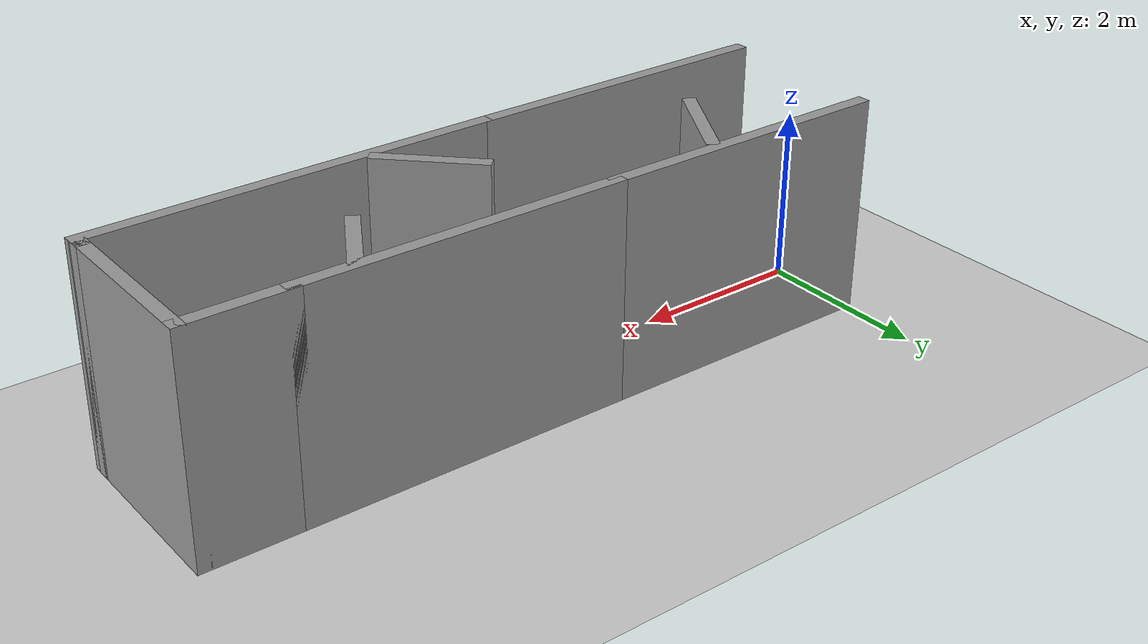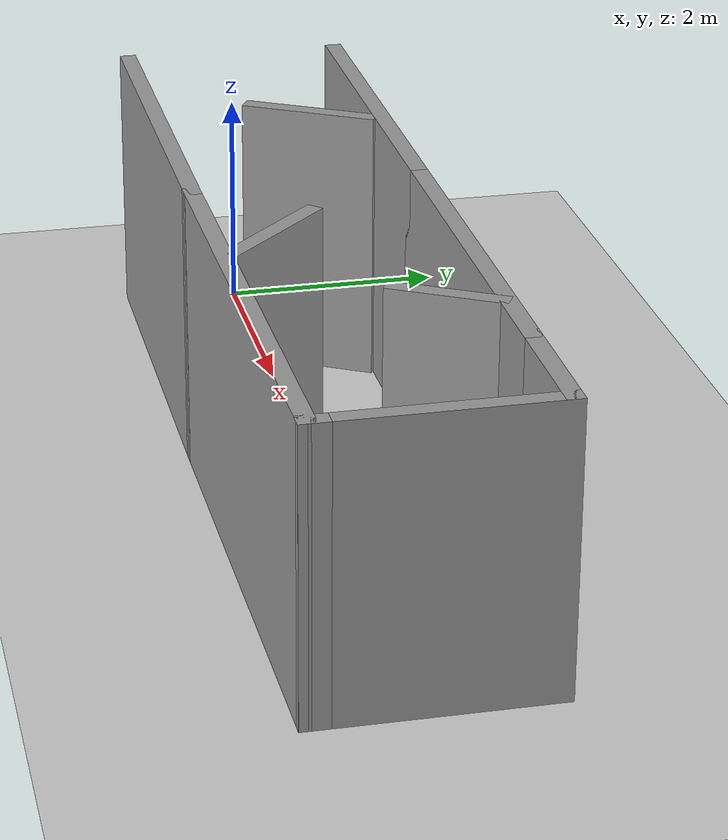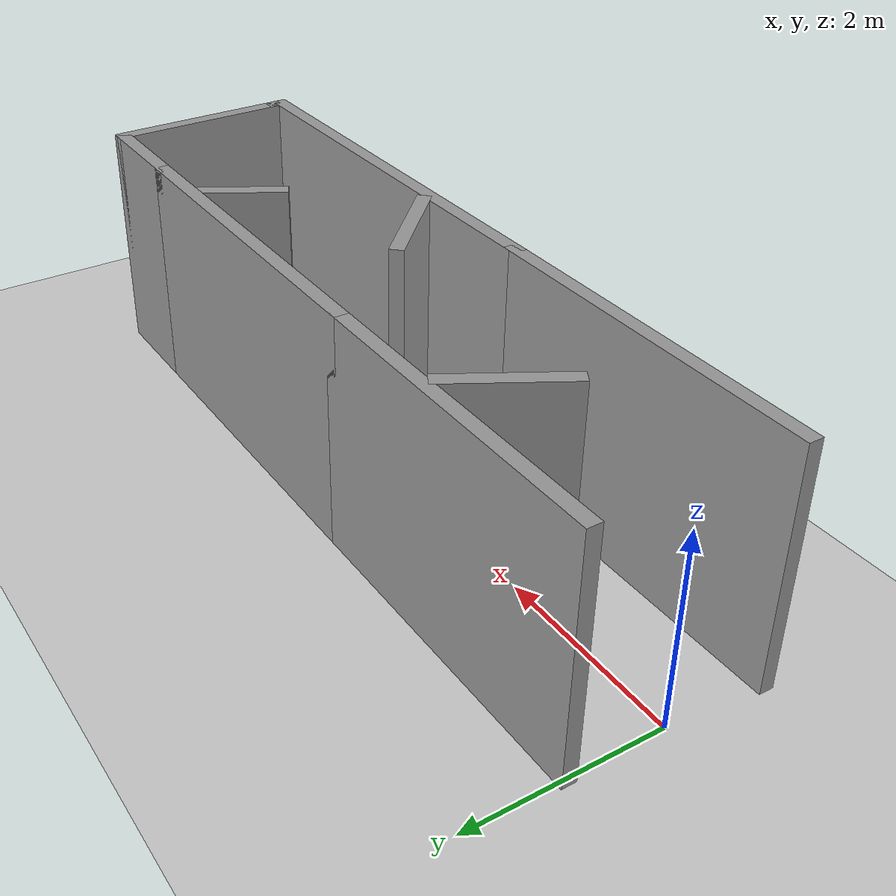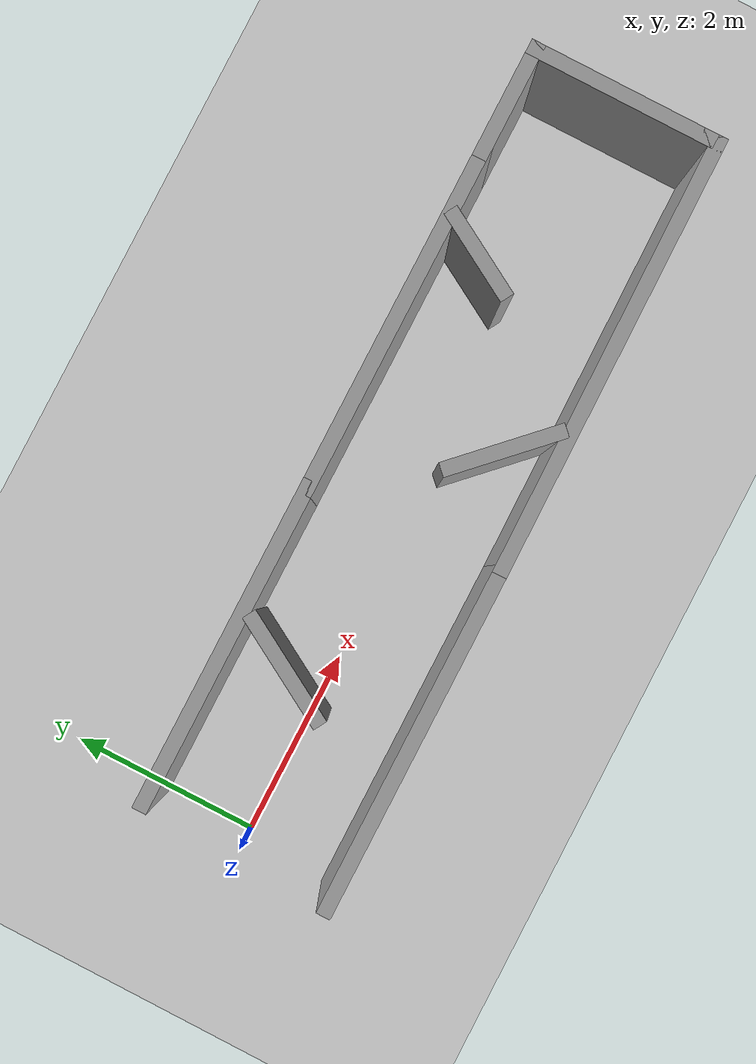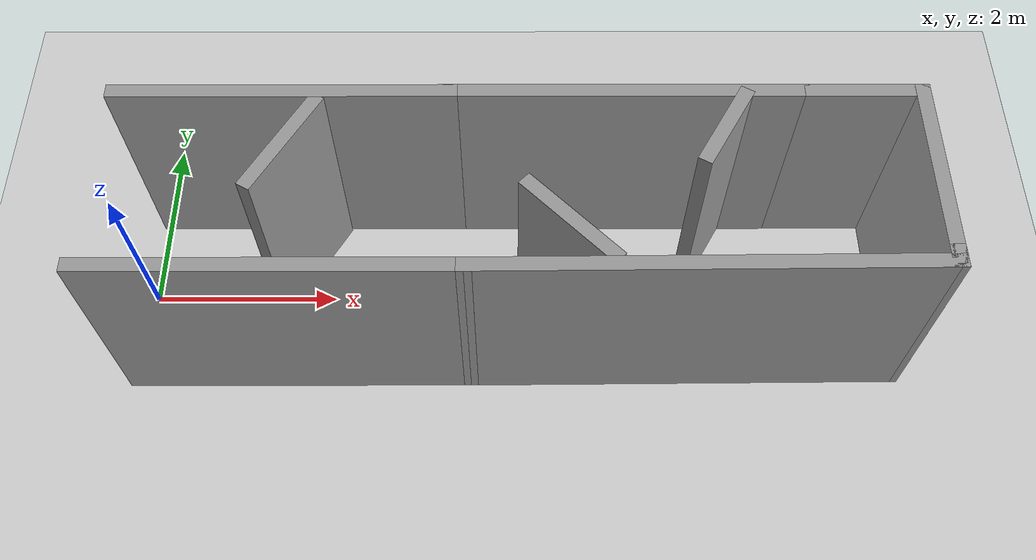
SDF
<sdf version="1.4">
  <world name="default">

    <scene>
      <ambient>0.4 0.4 0.4 1</ambient>
      <background>0.7 0.7 0.7 1</background>
      <shadows>true</shadows>
    </scene>

    <!-- A global light source -->
    <include>
      <uri>model://sun</uri>
    </include>

    <!-- A ground plane -->
    <include>
      <uri>model://ground_plane</uri>
    </include>

    <physics type="ode">
      <real_time_update_rate>1000.0</real_time_update_rate>
      <max_step_size>0.001</max_step_size>
      <real_time_factor>1</real_time_factor>
      <ode>
        <solver>
          <type>quick</type>
          <iters>150</iters>
          <precon_iters>0</precon_iters>
          <sor>1.400000</sor>
          <use_dynamic_moi_rescaling>1</use_dynamic_moi_rescaling>
        </solver>
        <constraints>
          <cfm>0.00001</cfm>
          <erp>0.2</erp>
          <contact_max_correcting_vel>2000.000000</contact_max_correcting_vel>
          <contact_surface_layer>0.01000</contact_surface_layer>
        </constraints>
      </ode>
    </physics>

      <model name='gap'>
      <pose>3.99781 0.015941 0 0 -0 0</pose>
      <link name='Wall_0'>
        <collision name='Wall_0_Collision'>
          <geometry>
            <box>
              <size>3.5 0.15 2.5</size>
            </box>
          </geometry>
          <pose>0 0 1.25 0 -0 0</pose>
        </collision>
        <visual name='Wall_0_Visual'>
          <pose>0 0 1.25 0 -0 0</pose>
          <geometry>
            <box>
              <size>3.5 0.15 2.5</size>
            </box>
          </geometry>
          <material>
            <script>
              <uri>file://media/materials/scripts/gazebo.material</uri>
              <name>Gazebo/Grey</name>
            </script>
            <ambient>1 1 1 1</ambient>
          </material>
          <meta>
            <layer>0</layer>
          </meta>
        </visual>
        <pose>-2.31281 0.994059 0 0 -0 0</pose>
      </link>
      <link name='Wall_10'>
        <collision name='Wall_10_Collision'>
          <geometry>
            <box>
              <size>4.67516 0.15 2.5</size>
            </box>
          </geometry>
          <pose>0 0 1.25 0 -0 0</pose>
        </collision>
        <visual name='Wall_10_Visual'>
          <pose>0 0 1.25 0 -0 0</pose>
          <geometry>
            <box>
              <size>4.67516 0.15 2.5</size>
            </box>
          </geometry>
          <material>
            <script>
              <uri>file://media/materials/scripts/gazebo.material</uri>
              <name>Gazebo/Grey</name>
            </script>
            <ambient>1 1 1 1</ambient>
          </material>
          <meta>
            <layer>0</layer>
          </meta>
        </visual>
        <pose>1.79969 -0.974691 0 0 -0 -3.13331</pose>
      </link>
      <link name='Wall_15'>
        <collision name='Wall_15_Collision'>
          <geometry>
            <box>
              <size>1.25 0.15 2.5</size>
            </box>
          </geometry>
          <pose>0 0 1.25 0 -0 0</pose>
        </collision>
        <visual name='Wall_15_Visual'>
          <pose>0 0 1.25 0 -0 0</pose>
          <geometry>
            <box>
              <size>1.25 0.15 2.5</size>
            </box>
          </geometry>
          <material>
            <script>
              <uri>file://media/materials/scripts/gazebo.material</uri>
              <name>Gazebo/Grey</name>
            </script>
            <ambient>1 1 1 1</ambient>
          </material>
          <meta>
            <layer>0</layer>
          </meta>
        </visual>
        <pose>-2.25893 0.391965 0 0 -0 -2.0944</pose>
      </link>
      <link name='Wall_18'>
        <collision name='Wall_18_Collision'>
          <geometry>
            <box>
              <size>1.25 0.15 2.5</size>
            </box>
          </geometry>
          <pose>0 0 1.25 0 -0 0</pose>
        </collision>
        <visual name='Wall_18_Visual'>
          <pose>0 0 1.25 0 -0 0</pose>
          <geometry>
            <box>
              <size>1.25 0.15 2.5</size>
            </box>
          </geometry>
          <material>
            <script>
              <uri>file://media/materials/scripts/gazebo.material</uri>
              <name>Gazebo/Grey</name>
            </script>
            <ambient>1 1 1 1</ambient>
          </material>
          <meta>
            <layer>0</layer>
          </meta>
        </visual>
        <pose>0.53203 -0.491818 0 0 -0 2.35619</pose>
      </link>
      <link name='Wall_21'>
        <collision name='Wall_21_Collision'>
          <geometry>
            <box>
              <size>1 0.15 2.5</size>
            </box>
          </geometry>
          <pose>0 0 1.25 0 -0 0</pose>
        </collision>
        <visual name='Wall_21_Visual'>
          <pose>0 0 1.25 0 -0 0</pose>
          <geometry>
            <box>
              <size>1 0.15 2.5</size>
            </box>
          </geometry>
          <material>
            <script>
              <uri>file://media/materials/scripts/gazebo.material</uri>
              <name>Gazebo/Grey</name>
            </script>
            <ambient>1 1 1 1</ambient>
          </material>
          <meta>
            <layer>0</layer>
          </meta>
        </visual>
        <pose>2.07723 0.576262 0 0 -0 -2.0944</pose>
      </link>
      <link name='Wall_3'>
        <collision name='Wall_3_Collision'>
          <geometry>
            <box>
              <size>3.75 0.15 2.5</size>
            </box>
          </geometry>
          <pose>0 0 1.25 0 -0 0</pose>
        </collision>
        <visual name='Wall_3_Visual'>
          <pose>0 0 1.25 0 -0 0</pose>
          <geometry>
            <box>
              <size>3.75 0.15 2.5</size>
            </box>
          </geometry>
          <material>
            <script>
              <uri>file://media/materials/scripts/gazebo.material</uri>
              <name>Gazebo/Grey</name>
            </script>
            <ambient>1 1 1 1</ambient>
          </material>
          <meta>
            <layer>0</layer>
          </meta>
        </visual>
        <pose>-2.26281 -0.993441 0 0 -0 3.14159</pose>
      </link>
      <link name='Wall_5'>
        <collision name='Wall_5_Collision'>
          <geometry>
            <box>
              <size>3.75 0.15 2.5</size>
            </box>
          </geometry>
          <pose>0 0 1.25 0 -0 0</pose>
        </collision>
        <visual name='Wall_5_Visual'>
          <pose>0 0 1.25 0 -0 0</pose>
          <geometry>
            <box>
              <size>3.75 0.15 2.5</size>
            </box>
          </geometry>
          <material>
            <script>
              <uri>file://media/materials/scripts/gazebo.material</uri>
              <name>Gazebo/Grey</name>
            </script>
            <ambient>1 1 1 1</ambient>
          </material>
          <meta>
            <layer>0</layer>
          </meta>
        </visual>
        <pose>1.16219 0.994059 0 0 -0 0</pose>
      </link>
      <link name='Wall_6'>
        <collision name='Wall_6_Collision'>
          <geometry>
            <box>
              <size>1.25 0.15 2.5</size>
            </box>
          </geometry>
          <pose>0 0 1.25 0 -0 0</pose>
        </collision>
        <visual name='Wall_6_Visual'>
          <pose>0 0 1.25 0 -0 0</pose>
          <geometry>
            <box>
              <size>1.25 0.15 2.5</size>
            </box>
          </geometry>
          <material>
            <script>
              <uri>file://media/materials/scripts/gazebo.material</uri>
              <name>Gazebo/Grey</name>
            </script>
            <ambient>1 1 1 1</ambient>
          </material>
          <meta>
            <layer>0</layer>
          </meta>
        </visual>
        <pose>3.51219 0.994059 0 0 -0 0</pose>
      </link>
      <link name='Wall_7'>
        <collision name='Wall_7_Collision'>
          <geometry>
            <box>
              <size>2 0.15 2.5</size>
            </box>
          </geometry>
          <pose>0 0 1.25 0 -0 0</pose>
        </collision>
        <visual name='Wall_7_Visual'>
          <pose>0 0 1.25 0 -0 0</pose>
          <geometry>
            <box>
              <size>2 0.15 2.5</size>
            </box>
          </geometry>
          <material>
            <script>
              <uri>file://media/materials/scripts/gazebo.material</uri>
              <name>Gazebo/Grey</name>
            </script>
            <ambient>1 1 1 1</ambient>
          </material>
          <meta>
            <layer>0</layer>
          </meta>
        </visual>
        <pose>4.06219 0.069059 0 0 -0 -1.5708</pose>
      </link>
      <link name='Wall_8'>
        <collision name='Wall_8_Collision'>
          <geometry>
            <box>
              <size>0.15 0.15 2.5</size>
            </box>
          </geometry>
          <pose>0 0 1.25 0 -0 0</pose>
        </collision>
        <visual name='Wall_8_Visual'>
          <pose>0 0 1.25 0 -0 0</pose>
          <geometry>
            <box>
              <size>0.15 0.15 2.5</size>
            </box>
          </geometry>
          <material>
            <script>
              <uri>file://media/materials/scripts/gazebo.material</uri>
              <name>Gazebo/Grey</name>
            </script>
            <ambient>1 1 1 1</ambient>
          </material>
          <meta>
            <layer>0</layer>
          </meta>
        </visual>
        <pose>4.06219 -0.855941 0 0 -0 0</pose>
      </link>
      <link name='Wall_9'>
        <collision name='Wall_9_Collision'>
          <geometry>
            <box>
              <size>0.25 0.15 2.5</size>
            </box>
          </geometry>
          <pose>0 0 1.25 0 -0 0</pose>
        </collision>
        <visual name='Wall_9_Visual'>
          <pose>0 0 1.25 0 -0 0</pose>
          <geometry>
            <box>
              <size>0.25 0.15 2.5</size>
            </box>
          </geometry>
          <material>
            <script>
              <uri>file://media/materials/scripts/gazebo.material</uri>
              <name>Gazebo/Grey</name>
            </script>
            <ambient>1 1 1 1</ambient>
          </material>
          <meta>
            <layer>0</layer>
          </meta>
        </visual>
        <pose>4.06219 -0.905941 0 0 -0 -1.5708</pose>
      </link>
      <static>1</static>
    </model>
  </world>
</sdf>
